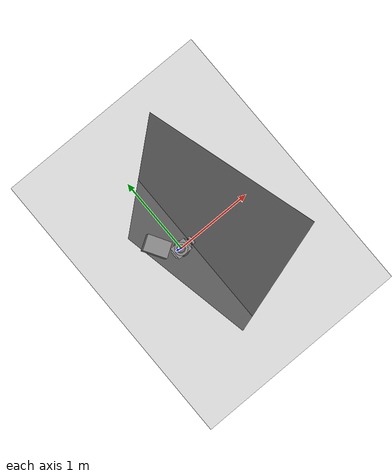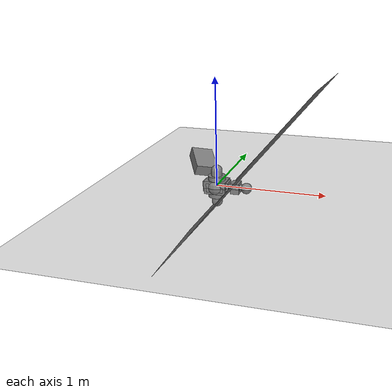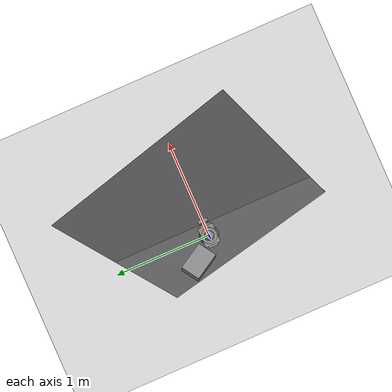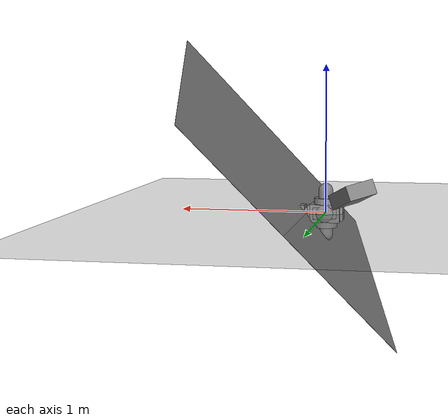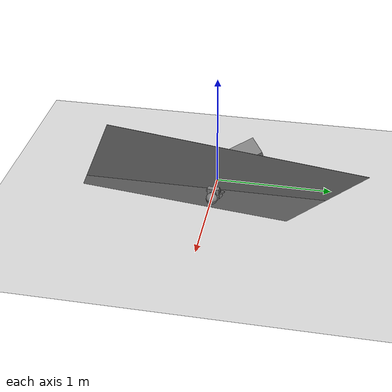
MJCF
<!-- Copyright 2026 -- CONTRIBUTORS. See LICENSE. -->
<mujoco model="collisions">
  <default>
    <geom contype="1" conaffinity="1"/>
    <default class="round">
      <geom contype="3" conaffinity="3"/>
    </default>
  </default>
  <worldbody>
    <geom name="floor" type="plane" size="0 0 1" class="round"/>
    <body name="ramp" pos="0.3 0 0.2" euler="0 -50 20">
      <geom name="ramp" type="plane" size="1 1 1" class="round"
            friction="0.4"/>
    </body>
    <body name="block" pos="-0.2 0.2 0.15" euler="10 20 30">
      <geom name="block" type="box" size="0.1 0.15 0.05"/>
    </body>
    <body name="ball">
      <freejoint/>
      <geom name="ball" type="sphere" size="0.1" class="round"/>
    </body>
    <body name="pebble">
      <freejoint/>
      <geom name="pebble" type="sphere" size="0.07" class="round" margin="0.01"
            gap="0.005" priority="1" condim="4" friction="0.7 0.01 0.001"
            solref="0.03 0.8" solimp="0.8 0.9 0.002 0.4 3"/>
    </body>
    <body name="pill">
      <freejoint/>
      <geom name="pill" type="capsule" size="0.05 0.15"/>
    </body>
    <body name="rod">
      <freejoint/>
      <geom name="rod" type="capsule" size="0.04 0.1" condim="6" margin="0.02"
            solref="-1000 -20"/>
    </body>
    <body name="drum">
      <freejoint/>
      <geom name="drum" type="cylinder" size="0.08 0.1" contype="2"
            conaffinity="2" condim="1"/>
    </body>
    <body name="crate">
      <freejoint/>
      <geom name="crate" type="box" size="0.1 0.08 0.06"/>
    </body>
    <body name="plank">
      <freejoint/>
      <geom name="plank" type="box" size="0.12 0.05 0.05" friction="1.2"
            priority="-1"/>
    </body>
    <body name="base">
      <freejoint/>
      <geom name="base" type="box" size="0.08 0.08 0.04"/>
      <body name="link" pos="0.08 0 0">
        <joint name="shoulder" axis="0 1 0"/>
        <geom name="link" type="capsule" fromto="0 0 0 0.2 0 0" size="0.03"/>
        <body name="cuff" pos="0.1 0 0">
          <geom name="cuff" type="box" size="0.04 0.05 0.05"/>
        </body>
        <body name="hand" pos="0.2 0 0">
          <joint name="wrist" axis="0 0 1"/>
          <geom name="hand" type="sphere" size="0.05" class="round"/>
        </body>
      </body>
    </body>
  </worldbody>
</mujoco>
